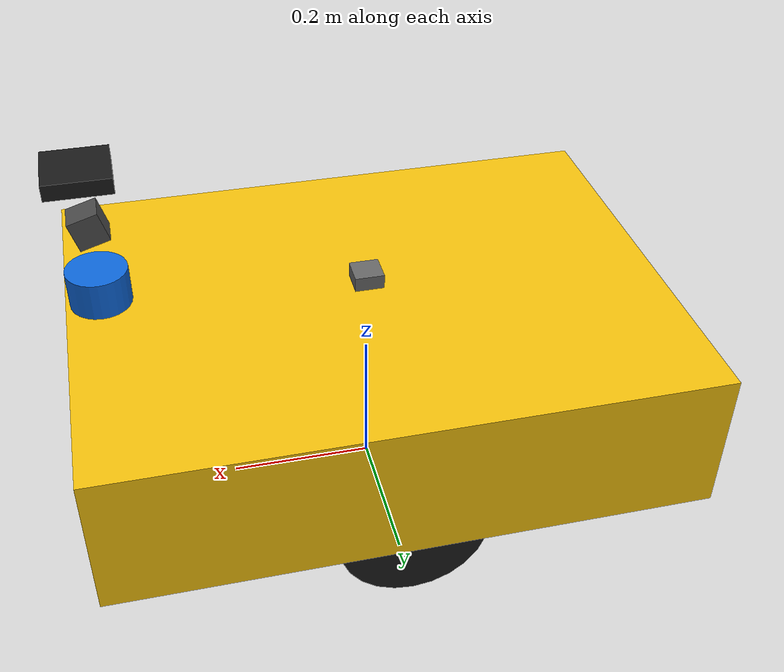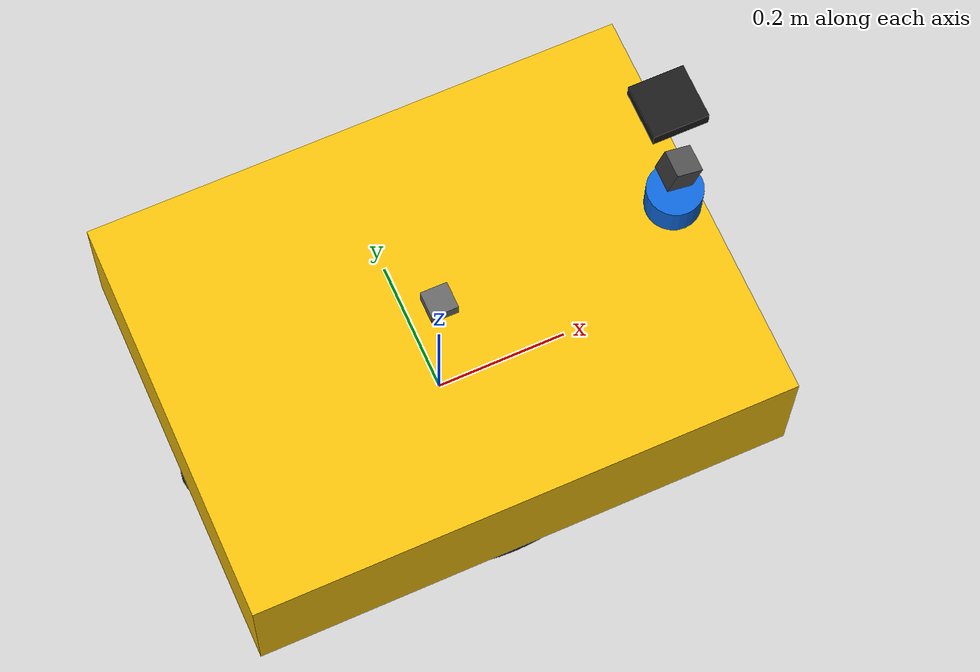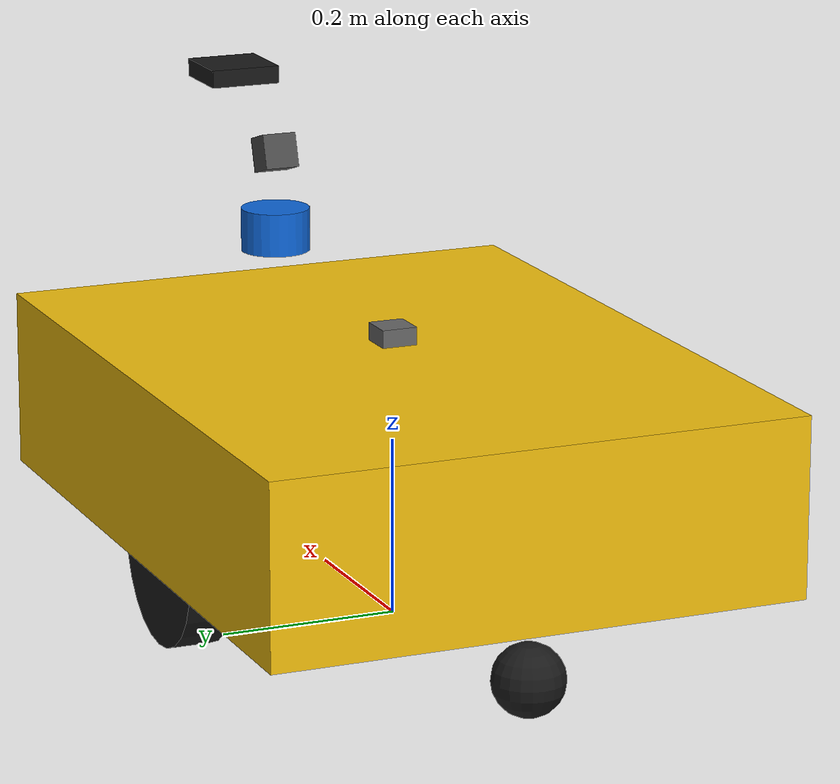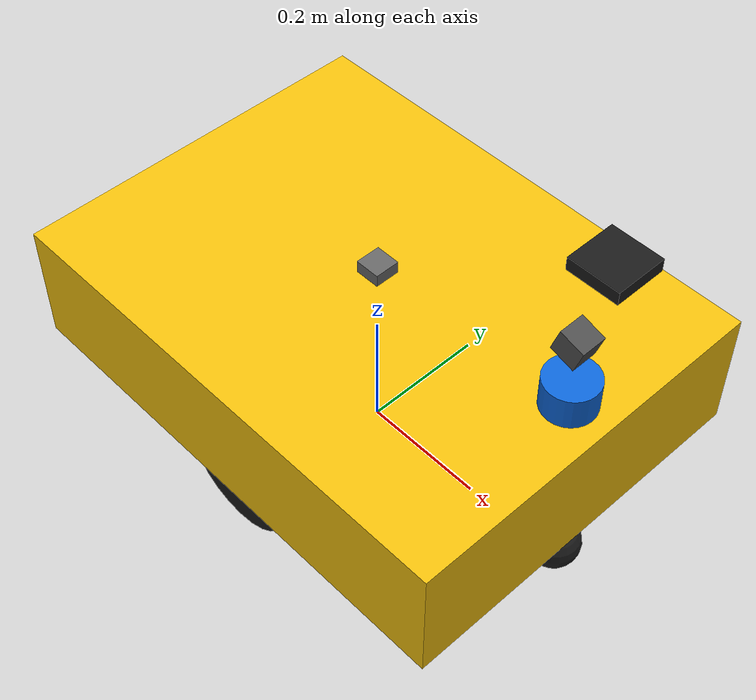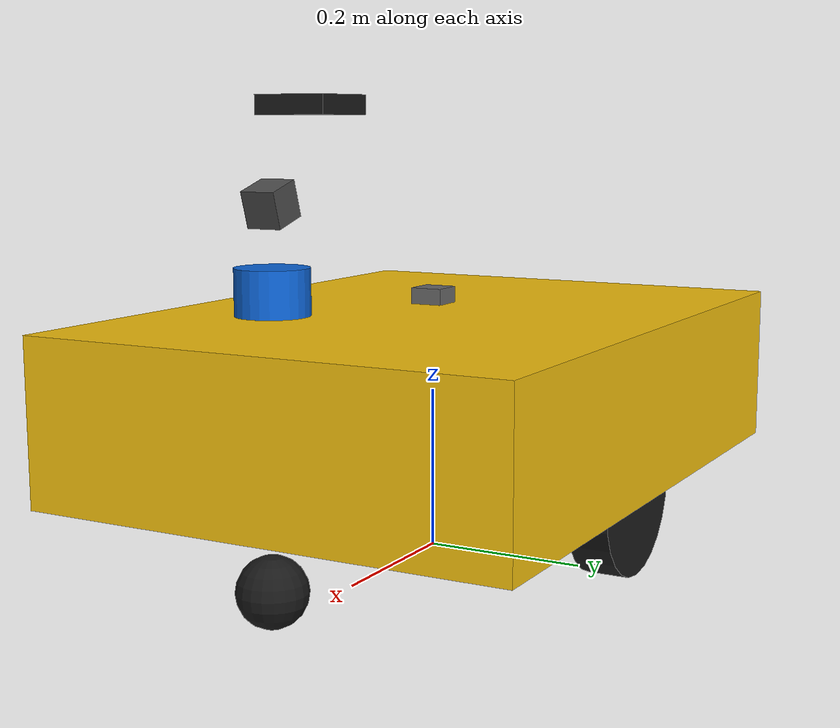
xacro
<?xml version="1.0"?>
<robot xmlns:xacro="http://www.ros.org/wiki/xacro" name="safety_core_agv">

  <!-- ========================================================
       Properties (industrial AGV-class footprint)
  ======================================================== -->
  <xacro:property name="base_length"     value="0.80"/>
  <xacro:property name="base_width"      value="0.60"/>
  <xacro:property name="base_height"     value="0.20"/>
  <xacro:property name="base_mass"       value="40.0"/>

  <xacro:property name="wheel_radius"    value="0.10"/>
  <xacro:property name="wheel_length"    value="0.05"/>
  <xacro:property name="wheel_separation" value="0.50"/>
  <xacro:property name="wheel_mass"      value="3.0"/>

  <xacro:property name="caster_radius"   value="0.04"/>

  <xacro:property name="lidar_height"    value="0.06"/>
  <xacro:property name="lidar_x_offset"  value="${base_length/2.0 - 0.05}"/>

  <!-- ========================================================
       Inertia macros
  ======================================================== -->
  <xacro:macro name="box_inertia" params="m x y z">
    <inertial>
      <mass value="${m}"/>
      <inertia
        ixx="${(1.0/12.0)*m*(y*y + z*z)}" ixy="0.0" ixz="0.0"
        iyy="${(1.0/12.0)*m*(x*x + z*z)}" iyz="0.0"
        izz="${(1.0/12.0)*m*(x*x + y*y)}"/>
    </inertial>
  </xacro:macro>

  <xacro:macro name="cylinder_inertia" params="m r l">
    <inertial>
      <mass value="${m}"/>
      <inertia
        ixx="${(1.0/12.0)*m*(3.0*r*r + l*l)}" ixy="0.0" ixz="0.0"
        iyy="${(1.0/12.0)*m*(3.0*r*r + l*l)}" iyz="0.0"
        izz="${0.5*m*r*r}"/>
    </inertial>
  </xacro:macro>

  <xacro:macro name="sphere_inertia" params="m r">
    <inertial>
      <mass value="${m}"/>
      <inertia
        ixx="${0.4*m*r*r}" ixy="0.0" ixz="0.0"
        iyy="${0.4*m*r*r}" iyz="0.0"
        izz="${0.4*m*r*r}"/>
    </inertial>
  </xacro:macro>

  <!-- ========================================================
       Footprint frame (REP-105) — projection onto ground plane
  ======================================================== -->
  <link name="base_footprint"/>

  <joint name="base_footprint_to_base_link" type="fixed">
    <parent link="base_footprint"/>
    <child link="base_link"/>
    <origin xyz="0 0 ${wheel_radius}" rpy="0 0 0"/>
  </joint>

  <!-- ========================================================
       Chassis
  ======================================================== -->
  <link name="base_link">
    <visual>
      <origin xyz="0 0 ${base_height/2.0}" rpy="0 0 0"/>
      <geometry><box size="${base_length} ${base_width} ${base_height}"/></geometry>
      <material name="agv_yellow"><color rgba="0.95 0.75 0.05 1.0"/></material>
    </visual>
    <collision>
      <origin xyz="0 0 ${base_height/2.0}" rpy="0 0 0"/>
      <geometry><box size="${base_length} ${base_width} ${base_height}"/></geometry>
    </collision>
    <xacro:box_inertia m="${base_mass}" x="${base_length}" y="${base_width}" z="${base_height}"/>
  </link>

  <!-- Gazebo material properties for base -->
  <gazebo reference="base_link">
    <material>Gazebo/Grey</material>
    <mu1>0.3</mu1>
    <mu2>0.3</mu2>
    <kp>1000000.0</kp>
    <kd>100.0</kd>
    <minDepth>0.001</minDepth>
    <maxVel>0.01</maxVel>
  </gazebo>

  <!-- ========================================================
       Drive wheels (left + right)
  ======================================================== -->
  <xacro:macro name="drive_wheel" params="prefix y_sign">
    <link name="${prefix}_wheel_link">
      <visual>
        <origin xyz="0 0 0" rpy="${pi/2.0} 0 0"/>
        <geometry><cylinder radius="${wheel_radius}" length="${wheel_length}"/></geometry>
        <material name="rubber_dark"><color rgba="0.1 0.1 0.1 1.0"/></material>
      </visual>
      <collision>
        <origin xyz="0 0 0" rpy="${pi/2.0} 0 0"/>
        <geometry><cylinder radius="${wheel_radius}" length="${wheel_length}"/></geometry>
      </collision>
      <xacro:cylinder_inertia m="${wheel_mass}" r="${wheel_radius}" l="${wheel_length}"/>
    </link>

    <joint name="${prefix}_wheel_joint" type="continuous">
      <parent link="base_link"/>
      <child link="${prefix}_wheel_link"/>
      <origin xyz="0 ${y_sign*wheel_separation/2.0} 0" rpy="0 0 0"/>
      <axis xyz="0 1 0"/>
      <dynamics damping="0.1" friction="0.0"/>
    </joint>
  </xacro:macro>

  <xacro:drive_wheel prefix="left"  y_sign="1.0"/>
  <xacro:drive_wheel prefix="right" y_sign="-1.0"/>

  <!-- Gazebo material properties for wheels -->
  <gazebo reference="left_wheel_link">
    <mu1>1.0</mu1>
    <mu2>1.0</mu2>
    <kp>1000000.0</kp>
    <kd>100.0</kd>
    <minDepth>0.001</minDepth>
    <maxVel>0.01</maxVel>
    <fdir1>0 1 0</fdir1>
  </gazebo>

  <gazebo reference="right_wheel_link">
    <mu1>1.0</mu1>
    <mu2>1.0</mu2>
    <kp>1000000.0</kp>
    <kd>100.0</kd>
    <minDepth>0.001</minDepth>
    <maxVel>0.01</maxVel>
    <fdir1>0 1 0</fdir1>
  </gazebo>

  <!-- ========================================================
       Caster (front + rear) for stability
  ======================================================== -->
  <xacro:macro name="caster" params="prefix x_sign">
    <link name="${prefix}_caster_link">
      <visual>
        <origin xyz="0 0 0" rpy="0 0 0"/>
        <geometry><sphere radius="${caster_radius}"/></geometry>
        <material name="rubber_dark"><color rgba="0.1 0.1 0.1 1.0"/></material>
      </visual>
      <collision>
        <origin xyz="0 0 0" rpy="0 0 0"/>
        <geometry><sphere radius="${caster_radius}"/></geometry>
      </collision>
      <xacro:sphere_inertia m="0.5" r="${caster_radius}"/>
    </link>

    <joint name="${prefix}_caster_joint" type="fixed">
      <parent link="base_link"/>
      <child link="${prefix}_caster_link"/>
      <origin xyz="${x_sign*(base_length/2.0 - caster_radius)} 0 ${-(wheel_radius - caster_radius)}" rpy="0 0 0"/>
      <dynamics damping="0.1" friction="0.0"/>
    </joint>
  </xacro:macro>

  <xacro:caster prefix="front" x_sign="1.0"/>
  <xacro:caster prefix="rear"  x_sign="-1.0"/>

  <!-- Gazebo material properties for casters -->
  <gazebo reference="front_caster_link">
    <mu1>0.5</mu1>
    <mu2>0.5</mu2>
    <kp>1000000.0</kp>
    <kd>100.0</kd>
    <minDepth>0.001</minDepth>
    <maxVel>0.01</maxVel>
  </gazebo>

  <gazebo reference="rear_caster_link">
    <mu1>0.5</mu1>
    <mu2>0.5</mu2>
    <kp>1000000.0</kp>
    <kd>100.0</kd>
    <minDepth>0.001</minDepth>
    <maxVel>0.01</maxVel>
  </gazebo>

  <!-- ========================================================
       Lidar (planar, forward-mounted)
  ======================================================== -->
  <link name="lidar_link">
    <visual>
      <geometry><cylinder radius="0.04" length="0.05"/></geometry>
      <material name="lidar_blue"><color rgba="0.05 0.4 0.85 1.0"/></material>
    </visual>
    <collision>
      <geometry><cylinder radius="0.04" length="0.05"/></geometry>
    </collision>
    <xacro:cylinder_inertia m="0.2" r="0.04" l="0.05"/>
  </link>

  <joint name="lidar_joint" type="fixed">
    <parent link="base_link"/>
    <child link="lidar_link"/>
    <origin xyz="${lidar_x_offset} 0 ${base_height + lidar_height}" rpy="0 0 0"/>
  </joint>

  <!-- ========================================================
       IMU (centered on base)
  ======================================================== -->
  <link name="imu_link">
    <visual>
      <geometry><box size="0.04 0.04 0.02"/></geometry>
      <material name="imu_grey"><color rgba="0.4 0.4 0.4 1.0"/></material>
    </visual>
  </link>

  <joint name="imu_joint" type="fixed">
    <parent link="base_link"/>
    <child link="imu_link"/>
    <origin xyz="0 0 ${base_height + 0.02}" rpy="0 0 0"/>
  </joint>

  <!-- ========================================================
       GPS (antenna on top of robot for localization)
  ======================================================== -->
  <link name="gps_link">
    <visual>
      <origin xyz="0 0 0" rpy="0 0 0"/>
      <geometry><box size="0.08 0.08 0.02"/></geometry>
      <material name="gps_black"><color rgba="0.1 0.1 0.1 1.0"/></material>
    </visual>
    <collision>
      <origin xyz="0 0 0" rpy="0 0 0"/>
      <geometry><box size="0.08 0.08 0.02"/></geometry>
    </collision>
    <xacro:box_inertia m="0.1" x="0.08" y="0.08" z="0.02"/>
  </link>

  <joint name="gps_joint" type="fixed">
    <parent link="base_link"/>
    <child link="gps_link"/>
    <origin xyz="${lidar_x_offset} 0.05 ${base_height + 0.25}" rpy="0 0 0"/>
  </joint>

  <!-- ========================================================
       Camera (forward-facing for visualization)
  ======================================================== -->
  <link name="camera_link">
    <visual>
      <geometry><box size="0.04 0.04 0.04"/></geometry>
      <material name="camera_grey"><color rgba="0.3 0.3 0.3 1.0"/></material>
    </visual>
    <collision>
      <geometry><box size="0.04 0.04 0.04"/></geometry>
    </collision>
    <xacro:box_inertia m="0.1" x="0.04" y="0.04" z="0.04"/>
  </link>

  <joint name="camera_joint" type="fixed">
    <parent link="base_link"/>
    <child link="camera_link"/>
    <origin xyz="${lidar_x_offset} 0 ${base_height + 0.15}" rpy="0 0.3 0"/>
  </joint>

  <!-- ========================================================
       Gazebo plugins (Harmonic / gz-sim 8)
  ======================================================== -->

  <!-- Differential drive plugin -->
  <gazebo>
    <plugin filename="gz-sim-diff-drive-system" name="gz::sim::systems::DiffDrive">
      <left_joint>left_wheel_joint</left_joint>
      <right_joint>right_wheel_joint</right_joint>
      <wheel_separation>${wheel_separation}</wheel_separation>
      <wheel_radius>${wheel_radius}</wheel_radius>
      <max_linear_acceleration>2.0</max_linear_acceleration>
      <max_linear_velocity>1.5</max_linear_velocity>
      <max_angular_velocity>2.0</max_angular_velocity>
      <min_wheel_torque>5.0</min_wheel_torque>
      <max_wheel_torque>20.0</max_wheel_torque>
      <topic>/cmd_vel</topic>
      <odom_topic>/odom</odom_topic>
      <tf_topic>/tf</tf_topic>
      <frame_id>odom</frame_id>
      <child_frame_id>base_footprint</child_frame_id>
      <odom_publish_frequency>50</odom_publish_frequency>
      <enable_ros2_control>true</enable_ros2_control>
    </plugin>
  </gazebo>

  <!-- Joint state publisher -->
  <gazebo>
    <plugin filename="gz-sim-joint-state-publisher-system" name="gz::sim::systems::JointStatePublisher">
      <topic>/joint_states</topic>
    </plugin>
  </gazebo>

  <!-- Lidar sensor -->
  <gazebo reference="lidar_link">
    <sensor name="lidar" type="gpu_lidar">
      <pose>0 0 0 0 0 0</pose>
      <topic>/scan</topic>
      <update_rate>15</update_rate>
      <ray>
        <scan>
          <horizontal>
            <samples>360</samples>
            <resolution>1</resolution>
            <min_angle>-3.14159</min_angle>
            <max_angle>3.14159</max_angle>
          </horizontal>
          <vertical>
            <samples>1</samples>
            <resolution>1</resolution>
            <min_angle>0</min_angle>
            <max_angle>0</max_angle>
          </vertical>
        </scan>
        <range>
          <min>0.10</min>
          <max>10.0</max>
          <resolution>0.01</resolution>
        </range>
        <noise>
          <type>gaussian</type>
          <mean>0.0</mean>
          <stddev>0.01</stddev>
        </noise>
      </ray>
      <always_on>1</always_on>
      <visualize>true</visualize>
    </sensor>
  </gazebo>

  <!-- IMU sensor -->
  <gazebo reference="imu_link">
    <sensor name="imu" type="imu">
      <topic>/imu</topic>
      <update_rate>100</update_rate>
      <always_on>1</always_on>
      <imu>
        <angular_velocity>
          <x>
            <noise type="gaussian">
              <mean>0.0</mean>
              <stddev>0.0001</stddev>
            </noise>
          </x>
          <y>
            <noise type="gaussian">
              <mean>0.0</mean>
              <stddev>0.0001</stddev>
            </noise>
          </y>
          <z>
            <noise type="gaussian">
              <mean>0.0</mean>
              <stddev>0.0001</stddev>
            </noise>
          </z>
        </angular_velocity>
        <linear_acceleration>
          <x>
            <noise type="gaussian">
              <mean>0.0</mean>
              <stddev>0.001</stddev>
            </noise>
          </x>
          <y>
            <noise type="gaussian">
              <mean>0.0</mean>
              <stddev>0.001</stddev>
            </noise>
          </y>
          <z>
            <noise type="gaussian">
              <mean>0.0</mean>
              <stddev>0.001</stddev>
            </noise>
          </z>
        </linear_acceleration>
      </imu>
    </sensor>
  </gazebo>

  <!-- Camera sensor -->
  <gazebo reference="camera_link">
    <sensor name="camera" type="camera">
      <pose>0 0 0 0 0 0</pose>
      <topic>/camera/image_raw</topic>
      <update_rate>30</update_rate>
      <camera>
        <horizontal_fov>1.047</horizontal_fov>
        <image>
          <width>640</width>
          <height>480</height>
          <format>R8G8B8</format>
        </image>
        <clip>
          <near>0.1</near>
          <far>100.0</far>
        </clip>
      </camera>
      <always_on>1</always_on>
      <visualize>true</visualize>
    </sensor>
  </gazebo>

  <!-- GPS sensor -->
  <gazebo reference="gps_link">
    <sensor name="gps" type="navsat">
      <pose>0 0 0 0 0 0</pose>
      <topic>/gps</topic>
      <update_rate>10</update_rate>
      <always_on>1</always_on>
      <navsat>
        <position_reference_frame_id>world</position_reference_frame_id>
        <velocity_reference_frame_id>world</velocity_reference_frame_id>
      </navsat>
      <noise>
        <type>gaussian</type>
        <mean>0.0</mean>
        <stddev>1.0</stddev>
      </noise>
    </sensor>
  </gazebo>

</robot>
